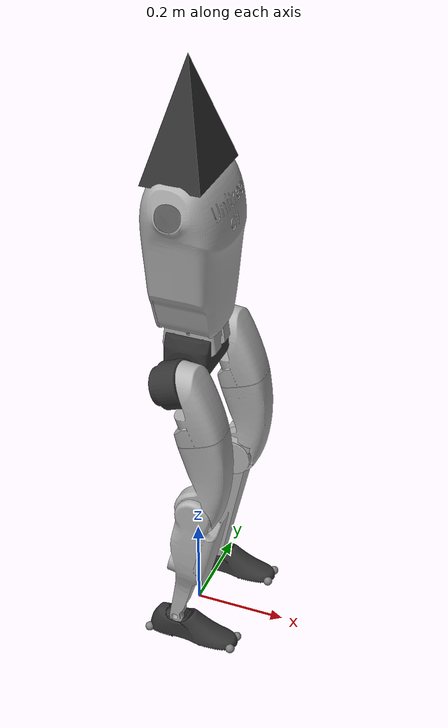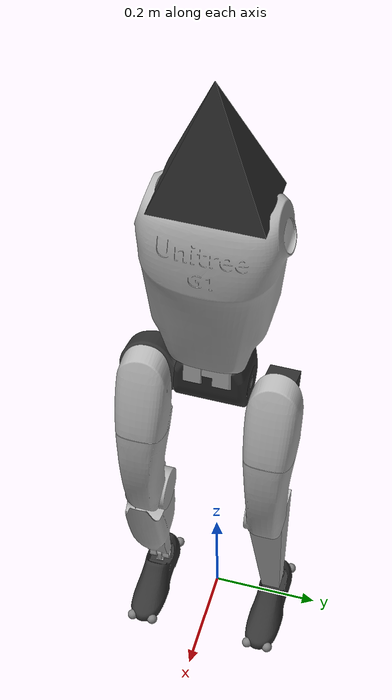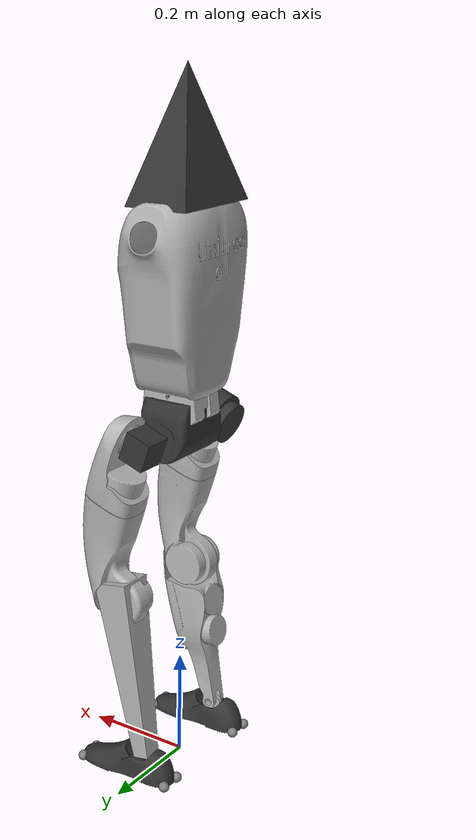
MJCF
<mujoco model="g1">
  <compiler angle="radian" meshdir="assets" autolimits="true"/>

  <option timestep="0.001" iterations="8" ls_iterations="4">
    <flag eulerdamp="disable"/>
  </option>

  <custom>
        <!-- brax custom params -->
        <numeric data="2500" name="constraint_limit_stiffness"/>
        <numeric data="27000" name="constraint_stiffness"/>
        <numeric data="30" name="constraint_ang_damping"/>
        <numeric data="80" name="constraint_vel_damping"/>
        <numeric data="-0.05" name="ang_damping"/>
        <numeric data="0.5" name="joint_scale_pos"/>
        <numeric data="0.1" name="joint_scale_ang"/>
        <numeric data="0" name="spring_mass_scale"/>
        <numeric data="1" name="spring_inertia_scale"/>
        <numeric data="20" name="matrix_inv_iterations"/>
        <numeric data="15" name="solver_maxls"/>
  </custom>

  <visual>
    <global ellipsoidinertia="true"/>
  </visual>

  <default>
    <geom contype="0" conaffinity="0" condim="3" solref="0.005 1"/>
    <equality solref="0.005 1"/>

    <default class="g1">
      <site rgba="1 0 0 1" size="0.01" group="5"/>
      <joint damping="0.5" armature="0.01" frictionloss="0.1"/>
      <default class="visual">
        <geom group="2" type="mesh" contype="0" conaffinity="0" density="0" material="metallic"/>
      </default>
      <default class="foot">
          <geom group="2" type="sphere" contype="0" conaffinity="0" density="0" size="0.01"/>
        </default>
      <default class="collision">
        <geom contype="1" group="3" type="sphere" rgba="0 0 0 0"/>
      </default>
    </default>
  </default>

  <asset>
    <material name="metallic" rgba="0.7 0.7 0.7 1"/>
    <material name="black" rgba="0.2 0.2 0.2 1"/>
    <material name="transparent" rgba="0 0 0 0"/>

    <mesh file="pelvis.STL"/>
    <mesh file="pelvis_contour_link.STL"/>
    <mesh file="left_hip_pitch_link.STL"/>
    <mesh file="left_hip_roll_link.STL"/>
    <mesh file="left_hip_yaw_link.STL"/>
    <mesh file="left_knee_link.STL"/>
    <mesh file="left_ankle_pitch_link.STL"/>
    <mesh file="left_ankle_roll_link.STL"/>
    <mesh file="right_hip_pitch_link.STL"/>
    <mesh file="right_hip_roll_link.STL"/>
    <mesh file="right_hip_yaw_link.STL"/>
    <mesh file="right_knee_link.STL"/>
    <mesh file="right_ankle_pitch_link.STL"/>
    <mesh file="right_ankle_roll_link.STL"/>
    <mesh file="torso_link.STL"/>
    <mesh file="head_link.STL"/>
    <mesh file="left_foot_simple.STL"/>
    <mesh file="right_foot_simple.STL"/>
  </asset>

  <worldbody>
    <light name="spotlight" mode="targetbodycom" target="pelvis" pos="0 -6 4" cutoff="30"/>
    <body name="pelvis" pos="0 0 0.755" childclass="g1">
      <site name="pelvis_back" pos="-0.05 0.0 0.0"/>
      <site name="pelvis_front" pos="0.05 0.0 0.0"/>
      <inertial pos="0 0 -0.07605" quat="1 0 -0.000405289 0" mass="2.86" diaginertia="0.0079143 0.0069837 0.0059404"/>
      <freejoint name="floating_base_joint"/>
      <light name="tracking" mode="trackcom" pos="0 0 2"/>
      <geom type="mesh" class="visual" mesh="pelvis"/>
      <geom type="mesh" class="visual" material="black" mesh="pelvis_contour_link"/>
      <body name="left_hip_pitch_link" pos="0 0.06445 -0.1027" quat="0.984807 0 -0.17365 0">
        <inertial pos="0.001962 0.049392 -0.000941" quat="0.420735 0.907025 -0.0155675 -0.00670646" mass="1.299"
          diaginertia="0.00138785 0.000955478 0.00086947"/>
        <joint name="left_hip_pitch_joint" axis="0 1 0" range="-2.35 3.05"/>
        <geom type="mesh" class="visual" material="black" mesh="left_hip_pitch_link"/>
        <body name="left_hip_roll_link" pos="0 0.0523 0">
          <inertial pos="0.024757 -0.001036 -0.086323" quat="0.977498 -0.00692636 0.210181 0.0165269" mass="1.446"
            diaginertia="0.00244106 0.00230425 0.00142899"/>
          <joint name="left_hip_roll_joint" axis="1 0 0" range="-0.26 2.53"/>
          <geom type="mesh" class="visual" mesh="left_hip_roll_link"/>
          <body name="left_hip_yaw_link" pos="0.01966 -0.0012139 -0.1241">
            <inertial pos="-0.053554 -0.011477 -0.14067" quat="0.645099 0.15885 0.202109 0.71956" mass="2.052"
              diaginertia="0.0114475 0.0107868 0.00214501"/>
            <joint name="left_hip_yaw_joint" axis="0 0 1" range="-2.75 2.75"/>
            <geom type="mesh" class="visual" mesh="left_hip_yaw_link"/>
            <body name="left_knee_link" pos="-0.078292 -0.0017335 -0.177225" quat="0.967714 0 0.252052 0">
              <inertial pos="0.005505 0.006534 -0.116629" quat="0.799234 -0.0128894 0.0354278 0.599836" mass="2.252"
                diaginertia="0.0127418 0.0124382 0.00192524"/>
              <joint name="left_knee_joint" axis="0 1 0" range="-0.33489 2.5449"/>
              <geom type="mesh" class="visual" mesh="left_knee_link"/>
              <body name="left_ankle_pitch_link" pos="0 0.0040687 -0.30007" quat="0.99678 0 -0.0801788 0">
                <inertial pos="-0.007269 0 0.011137" quat="0.603053 0.369225 0.369225 0.603053" mass="0.074"
                  diaginertia="1.89e-05 1.40805e-05 6.9195e-06"/>
                <joint name="left_ankle_pitch_joint" axis="0 1 0" range="-0.68 0.73"/>
                <geom type="mesh" class="visual" mesh="left_ankle_pitch_link"/>
                <body name="left_ankle_roll_link" pos="0 0 -0.017558">
                  <site name="left_foot_p1" pos="0.05 0.0 -0.034"/>
                  <site name="left_foot_p2" pos="-0.05 0.0 -0.034"/>
                  <site name="left_foot_p3" pos="0.0 0.05 -0.034"/>
                  <inertial pos="0.024762 2e-05 -0.012526" quat="0.000771333 0.734476 0.000921291 0.678634" mass="0.391"
                    diaginertia="0.00110394 0.0010657 0.000149255"/>
                  <joint name="left_ankle_roll_joint" axis="1 0 0" range="-0.2618 0.2618"/>
                  <geom type="mesh" class="visual" material="black" mesh="left_ankle_roll_link"/>
                  <geom type="mesh" mesh="left_foot_simple" class="collision" name="left_foot" rgba="1 1 1 0"/>
                  <geom pos="-0.06 0.02 -0.03" class="foot"/>
                  <geom pos="-0.06 -0.02 -0.03" class="foot"/>
                  <geom pos="0.13 0.02 -0.03" class="foot"/>
                  <geom pos="0.13 -0.02 -0.03" class="foot"/>
                </body>
              </body>
            </body>
          </body>
        </body>
      </body>
      <body name="right_hip_pitch_link" pos="0 -0.06445 -0.1027" quat="0.984807 0 -0.17365 0">
        <inertial pos="0.001962 -0.049392 -0.000941" quat="0.907025 0.420735 0.00670646 0.0155675" mass="1.299"
          diaginertia="0.00138785 0.000955478 0.00086947"/>
        <joint name="right_hip_pitch_joint" axis="0 1 0" range="-2.35 3.05"/>
        <geom type="mesh" class="visual" material="black" mesh="right_hip_pitch_link"/>
        <body name="right_hip_roll_link" pos="0 -0.0523 0">
          <inertial pos="0.024757 0.001036 -0.086323" quat="0.977498 0.00692636 0.210181 -0.0165269" mass="1.446"
            diaginertia="0.00244106 0.00230425 0.00142899"/>
          <joint name="right_hip_roll_joint" axis="1 0 0" range="-2.53 0.26"/>
          <geom type="mesh" class="visual" mesh="right_hip_roll_link"/>
          <body name="right_hip_yaw_link" pos="0.01966 0.0012139 -0.1241">
            <inertial pos="-0.053554 0.011477 -0.14067" quat="0.71956 0.202109 0.15885 0.645099" mass="2.052"
              diaginertia="0.0114475 0.0107868 0.00214501"/>
            <joint name="right_hip_yaw_joint" axis="0 0 1" range="-2.75 2.75"/>
            <geom type="mesh" class="visual" mesh="right_hip_yaw_link"/>
            <body name="right_knee_link" pos="-0.078292 0.0017335 -0.177225" quat="0.967714 0 0.252052 0">
              <inertial pos="0.005505 -0.006534 -0.116629" quat="0.599836 0.0354278 -0.0128894 0.799234" mass="2.252"
                diaginertia="0.0127418 0.0124382 0.00192524"/>
              <joint name="right_knee_joint" axis="0 1 0" range="-0.33489 2.5449"/>
              <geom type="mesh" class="visual" mesh="right_knee_link"/>
              <body name="right_ankle_pitch_link" pos="0 -0.0040687 -0.30007" quat="0.99678 0 -0.0801788 0">
                <inertial pos="-0.007269 0 0.011137" quat="0.603053 0.369225 0.369225 0.603053" mass="0.074"
                  diaginertia="1.89e-05 1.40805e-05 6.9195e-06"/>
                <joint name="right_ankle_pitch_joint" axis="0 1 0" range="-0.68 0.73"/>
                <geom type="mesh" class="visual" mesh="right_ankle_pitch_link"/>
                <body name="right_ankle_roll_link" pos="0 0 -0.017558">
                  <site name="right_foot_p1" pos="0.05 0.0 -0.034"/>
                  <site name="right_foot_p2" pos="-0.05 0.0 -0.034"/>
                  <site name="right_foot_p3" pos="0.0 -0.05 -0.034"/>
                  <inertial pos="0.024762 -2e-05 -0.012526" quat="-0.000771333 0.734476 -0.000921291 0.678634"
                    mass="0.391" diaginertia="0.00110394 0.0010657 0.000149255"/>
                  <joint name="right_ankle_roll_joint" axis="1 0 0" range="-0.2618 0.2618"/>
                  <geom type="mesh" class="visual" material="black" mesh="right_ankle_roll_link"/>
                  <geom type="mesh" mesh="right_foot_simple" class="collision" name="right_foot" rgba="0 0 0 0"/>
                  <geom pos="-0.06 0.02 -0.03" class="foot"/>
                  <geom pos="-0.06 -0.02 -0.03" class="foot"/>
                  <geom pos="0.13 0.02 -0.03" class="foot"/>
                  <geom pos="0.13 -0.02 -0.03" class="foot"/>
                </body>
              </body>
            </body>
          </body>
        </body>
      </body>
      <body name="torso_link">
        <inertial pos="0.00187791 0.00229457 0.208747" quat="0.999957 0.00624375 -0.00636707 -0.0026338" mass="7.52036"
          diaginertia="0.12848 0.111753 0.0350394"/>
        <site name="imu" pos="-0.04233868314 0.00166 0.152067"/>
        <site name="head" pos="0 0 0.5"/>
        <joint name="torso_joint" axis="0 0 1" range="-2.618 2.618"/>
        <geom type="mesh" class="visual" mesh="torso_link"/>
        <geom type="mesh" class="visual" material="black" mesh="head_link"/>
      </body>
    </body>
  </worldbody>

  <actuator>
    <position kp="400.0" class="g1" name="left_hip_pitch_joint" joint="left_hip_pitch_joint" forcerange="-44 44" inheritrange="1"/>
    <position kp="400.0" class="g1" name="left_hip_roll_joint" joint="left_hip_roll_joint" forcerange="-44 44" inheritrange="1"/>
    <position kp="400.0" class="g1" name="left_hip_yaw_joint" joint="left_hip_yaw_joint" forcerange="-44 44" inheritrange="1"/>
    <position kp="400.0" class="g1" name="left_knee_joint" joint="left_knee_joint" forcerange="-70 70" inheritrange="1"/>
    <position kp="400.0" class="g1" name="left_ankle_pitch_joint" joint="left_ankle_pitch_joint" forcerange="-20 20" inheritrange="1"/>
    <position kp="400.0" class="g1" name="left_ankle_roll_joint" joint="left_ankle_roll_joint" forcerange="-20 20" inheritrange="1"/>

    <position kp="400.0" class="g1" name="right_hip_pitch_joint" joint="right_hip_pitch_joint" forcerange="-44 44" inheritrange="1"/>
    <position kp="400.0" class="g1" name="right_hip_roll_joint" joint="right_hip_roll_joint" forcerange="-44 44" inheritrange="1"/>
    <position kp="400.0" class="g1" name="right_hip_yaw_joint" joint="right_hip_yaw_joint" forcerange="-44 44" inheritrange="1"/>
    <position kp="400.0" class="g1" name="right_knee_joint" joint="right_knee_joint" forcerange="-70 70" inheritrange="1"/>
    <position kp="400.0" class="g1" name="right_ankle_pitch_joint" joint="right_ankle_pitch_joint" forcerange="-20 20" inheritrange="1"/>
    <position kp="400.0" class="g1" name="right_ankle_roll_joint" joint="right_ankle_roll_joint" forcerange="-20 20" inheritrange="1"/>

    <position kp="400.0" class="g1" name="torso_joint" joint="torso_joint" forcerange="-44 44" inheritrange="1"/>

    <velocity kv="40.0" class="g1" name="left_hip_pitch_joint_v" joint="left_hip_pitch_joint" forcerange="-44 44" ctrlrange="-20 20"/>
    <velocity kv="40.0" class="g1" name="left_hip_roll_joint_v" joint="left_hip_roll_joint" forcerange="-44 44" ctrlrange="-20 20"/>
    <velocity kv="40.0" class="g1" name="left_hip_yaw_joint_v" joint="left_hip_yaw_joint" forcerange="-44 44" ctrlrange="-20 20"/>
    <velocity kv="40.0" class="g1" name="left_knee_joint_v" joint="left_knee_joint" forcerange="-70 70" ctrlrange="-20 20"/>
    <velocity kv="40.0" class="g1" name="left_ankle_pitch_joint_v" joint="left_ankle_pitch_joint" forcerange="-20 20" ctrlrange="-20 20"/>
    <velocity kv="40.0" class="g1" name="left_ankle_roll_joint_v" joint="left_ankle_roll_joint" forcerange="-20 20" ctrlrange="-20 20"/>

    <velocity kv="40.0" class="g1" name="right_hip_pitch_joint_v" joint="right_hip_pitch_joint" forcerange="-44 44" ctrlrange="-20 20"/>
    <velocity kv="40.0" class="g1" name="right_hip_roll_joint_v" joint="right_hip_roll_joint" forcerange="-44 44" ctrlrange="-20 20"/>
    <velocity kv="40.0" class="g1" name="right_hip_yaw_joint_v" joint="right_hip_yaw_joint" forcerange="-44 44" ctrlrange="-20 20"/>
    <velocity kv="40.0" class="g1" name="right_knee_joint_v" joint="right_knee_joint" forcerange="-70 70" ctrlrange="-20 20"/>
    <velocity kv="40.0" class="g1" name="right_ankle_pitch_joint_v" joint="right_ankle_pitch_joint" forcerange="-20 20" ctrlrange="-20 20"/>
    <velocity kv="40.0" class="g1" name="right_ankle_roll_joint_v" joint="right_ankle_roll_joint" forcerange="-20 20" ctrlrange="-20 20"/>

    <velocity kv="40.0" class="g1" name="torso_joint_v" joint="torso_joint" forcerange="-88 88" ctrlrange="-10 10"/>
  </actuator>

  <sensor>
    <gyro name="imu-angular-velocity" site="imu" cutoff="34.9"/>
    <accelerometer name="imu-linear-acceleration" site="imu" cutoff="157"/>
    <framequat name="imu-body-quat" objtype="site" objname="imu"/>
  </sensor>

  <keyframe>
    <key name="stand"
      qpos="
      0 0 0.75
      1 0 0 0
      0 0 0 0 0 0
      0 0 0 0 0 0
      0"/>
  </keyframe>
</mujoco>
